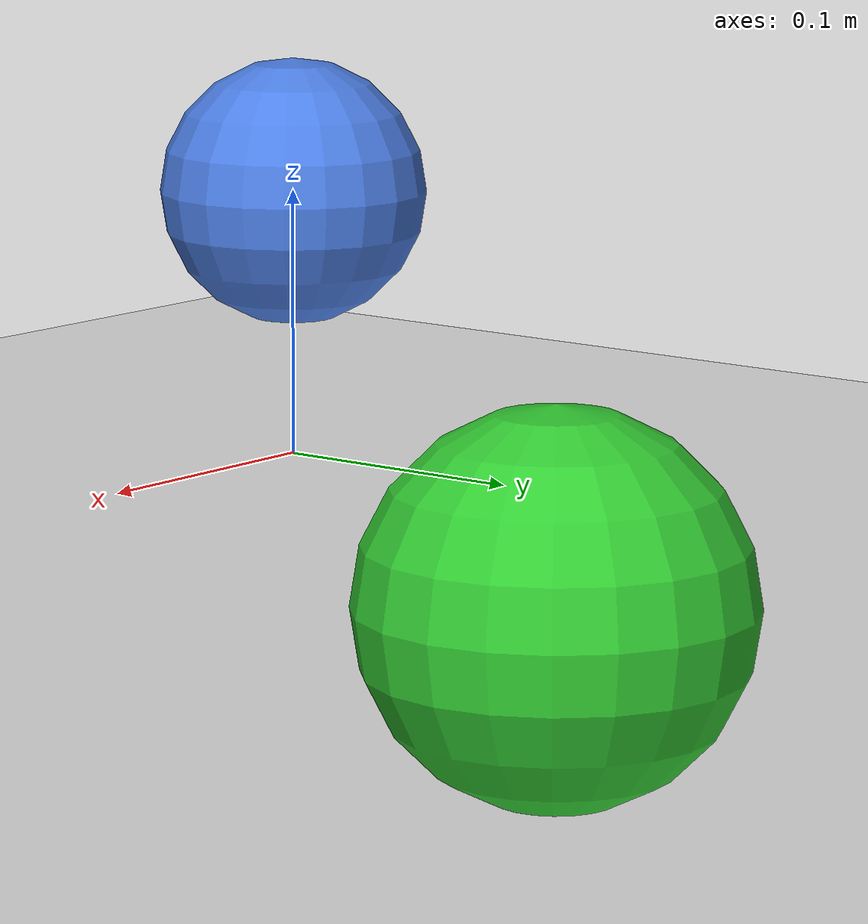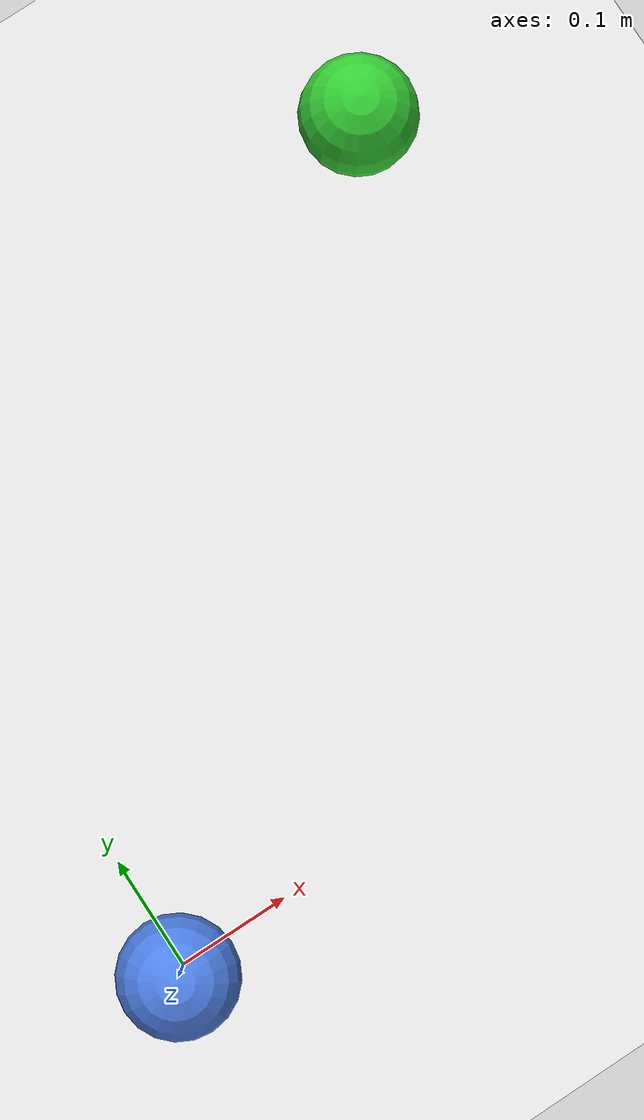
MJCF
<mujoco model="aif_robot_scene">
  <compiler angle="radian" coordinate="local"/>
  <option timestep="0.01" gravity="0 0 -9.81"/>

  <default>
    <geom friction="0.5 0.1 0.1" rgba="0.7 0.7 0.7 1"/>
  </default>

  <worldbody>
    <geom name="ground" type="plane" size="2 2 0.1" rgba="0.9 0.9 0.9 1"/>
    <site name="goal" pos="0.5 0.5 0.1" size="0.05" rgba="0.2 0.8 0.2 1"/>
    <body name="robot" pos="0 0 0.1">
      <freejoint name="robot_free"/>
      <geom name="robot_geom" type="sphere" size="0.05" rgba="0.3 0.5 0.9 1"/>
      <site name="robot_site" pos="0 0 0" size="0.02" rgba="1 0 0 1"/>
    </body>
  </worldbody>

  <actuator>
    <motor name="x_motor" joint="robot_free" ctrllimited="true" ctrlrange="-2 2" ctrlfrcrange="-5 5"/>
    <motor name="y_motor" joint="robot_free" ctrllimited="true" ctrlrange="-2 2" ctrlfrcrange="-5 5"/>
  </actuator>
</mujoco>
